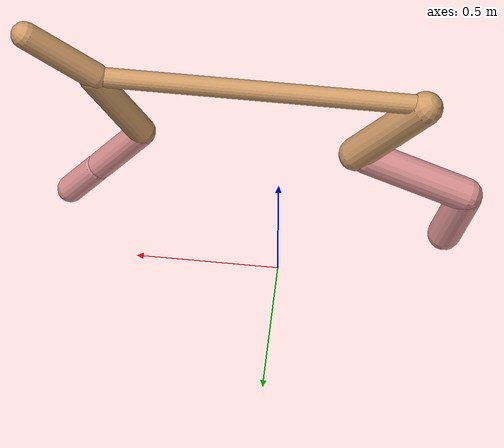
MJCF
<mujoco model="cheetah">
  <compiler angle="radian" coordinate="local" inertiafromgeom="true" settotalmass="14" />
  <default>
    <joint armature=".1" damping=".01" limited="true" solimplimit="0 .8 .03" solreflimit=".02 1" stiffness="8" />
    <geom conaffinity="0" condim="3" contype="1" friction="0.8 .1 .1" rgba="0.8 0.6 .4 1" solimp="0.0 0.8 0.01" solref="0.02 1" />
    <motor ctrllimited="true" ctrlrange="-1 1" />
  </default>
  <size nstack="300000" nuser_geom="1" />
  <option gravity="0 0 -9.81" timestep="0.01" />
  <worldbody>
    <body name="torso" pos="0.0 0.0 1.0396781154311192">
      <joint armature="0" axis="1 0 0" damping="0" limited="false" name="ignorex" pos="0 0 0" stiffness="0" type="slide" />
      <joint armature="0" axis="0 0 1" damping="0" limited="false" name="ignorez" pos="0 0 0" stiffness="0" type="slide" />
      <joint armature="0" axis="0 1 0" damping="0" limited="false" name="ignorey" pos="0 0 0" stiffness="0" type="hinge" />
      <geom fromto="-0.5 0.0 0.0 0.6318687762622961 0.0 0.0" name="torso" size="0.03398320392112856" type="capsule" />
      <geom axisangle="0 1 0 .87" name="head" pos="0.7318687762622961 0.0 0.1" size="0.04589048067798354 0.15" type="capsule" />

      <body name="bthigh" pos="-.5 0 0">
        <joint axis="0 1 0" damping="6" name="bthigh" pos="0 0 0" range="-.52 1.05" stiffness="240" type="hinge" />
        <geom axisangle="0 1 0 -3.8" name="bthigh" pos="0.1254493926436501 0.0 -0.16308421043674515" size="0.05806439804397783 0.18674010740467142" type="capsule" />
        <body name="bshin" pos="0.21089878528730022 0.0 -0.3161684208734903">
          <joint axis="0 1 0" damping="4.5" name="bshin" pos="0 0 0" range="-.785 .785" stiffness="180" type="hinge" />
          <geom axisangle="0 1 0 -2.03" name="bshin" pos="-0.17862084863930525 0.0 -0.08931042431965262" rgba="0.9 0.6 0.6 1" size="0.05806439804397783 0.19317942145310837" type="capsule" />
          <body name="bfoot" pos="-0.3572416972786105 0.0 -0.17862084863930525">
            <joint axis="0 1 0" damping="3" name="bfoot" pos="0 0 0" range="-.4 .785" stiffness="120" type="hinge" />
            <geom axisangle="0 1 0 -.27" name="bfoot" pos="0.03799514599408267 0.0 -0.12285097204753398" rgba="0.9 0.6 0.6 1" size="0.05806439804397783 0.12105910411061459" type="capsule" />
            <inertial mass="10" />
          </body>
        </body>
      </body>
      <body name="fthigh" pos="0.6318687762622961 0.0 0.0">
        <joint axis="0 1 0" damping="4.5" name="fthigh" pos="0 0 0" range="-1.5 0.8" stiffness="180" type="hinge" />
        <geom axisangle="0 1 0 .52" name="fthigh" pos="-0.0851560113071213 0.0 -0.1459817336693508" size="0.04719257841796267 0.16307914831252152" type="capsule" />
        <body name="fshin" pos="-0.1703120226142426 0.0 -0.2919634673387016">
          <joint axis="0 1 0" damping="3" name="fshin" pos="0 0 0" range="-1.2 1.1" stiffness="120" type="hinge" />
          <geom axisangle="0 1 0 -.6" name="fshin" pos="0.07903588017815392 0.0 -0.10943429563129004" rgba="0.9 0.6 0.6 1" size="0.04719257841796267 0.12997285504606979" type="capsule" />
          <body name="ffoot" pos="0.15807176035630785 0.0 -0.21886859126258007">
            <joint axis="0 1 0" damping="1.5" name="ffoot" pos="0 0 0" range="-3.1 -0.3" stiffness="60" type="hinge" />
            <geom axisangle="0 1 0 -.6" name="ffoot" pos="0.05356080410012664 0.0 -0.08331680637797478" rgba="0.9 0.6 0.6 1" size="0.04719257841796267 0.08583113069080081" type="capsule" />
            <inertial mass="10" />
          </body>
        </body>
      </body>
    </body>
  </worldbody>
  <actuator>
    <motor gear="120" joint="bthigh" name="bthigh" />
    <motor gear="90" joint="bshin" name="bshin" />
    <motor gear="60" joint="bfoot" name="bfoot" />
    <motor gear="120" joint="fthigh" name="fthigh" />
    <motor gear="60" joint="fshin" name="fshin" />
    <motor gear="30" joint="ffoot" name="ffoot" />
  </actuator>
</mujoco>
